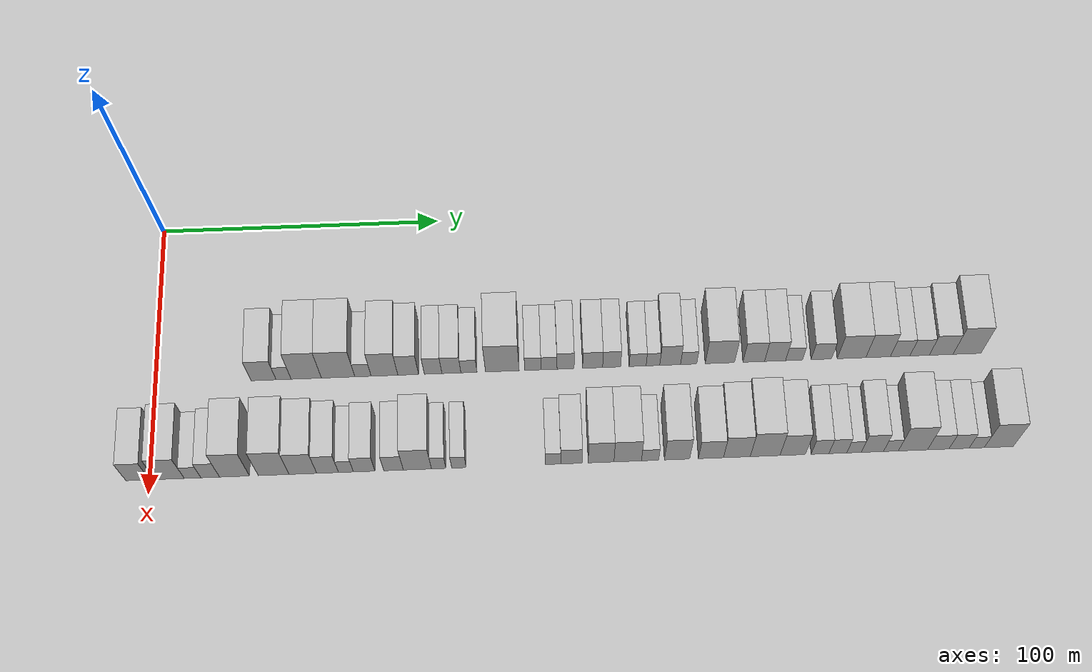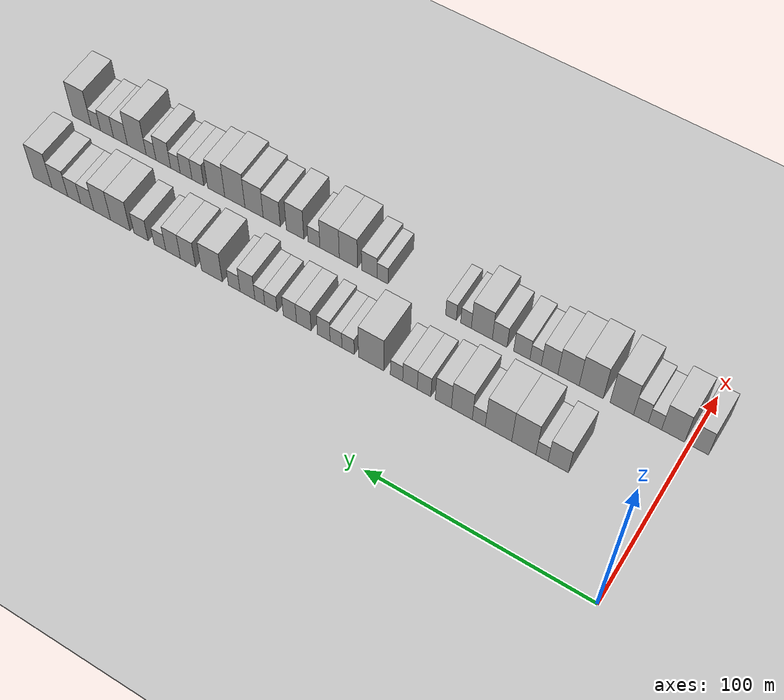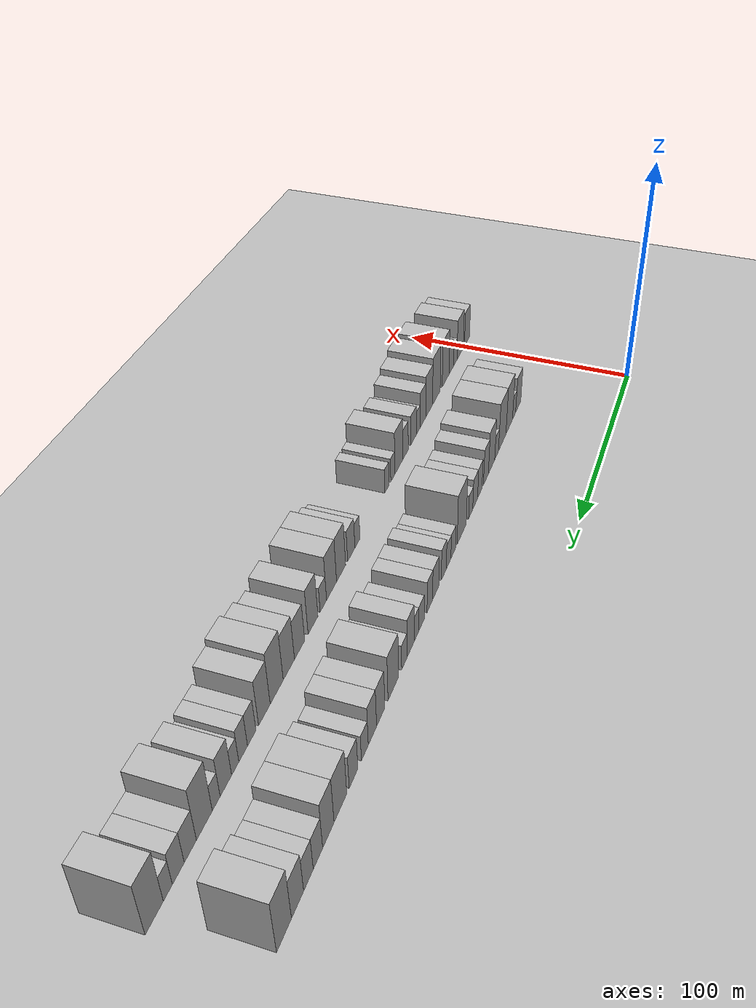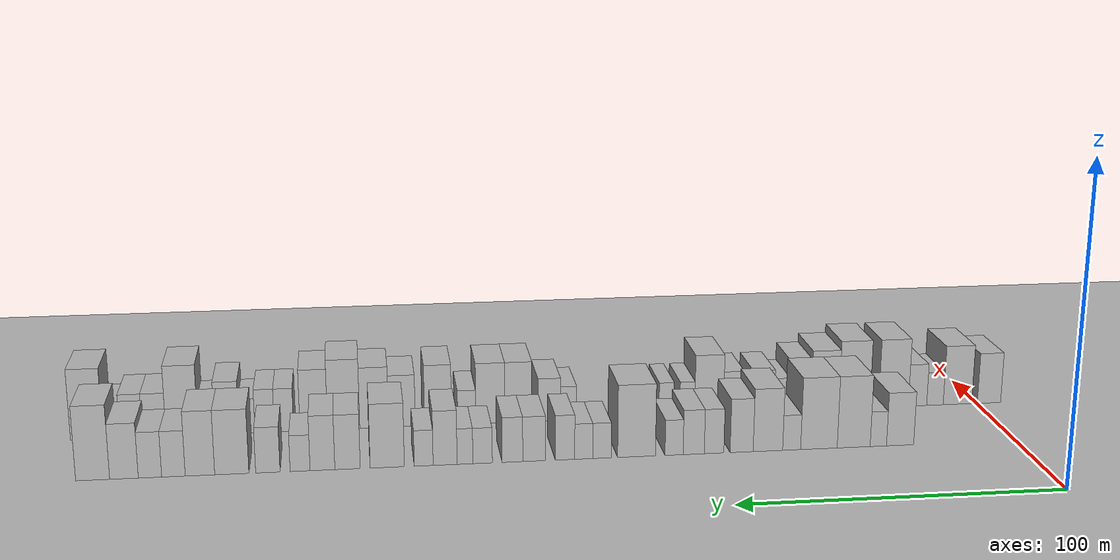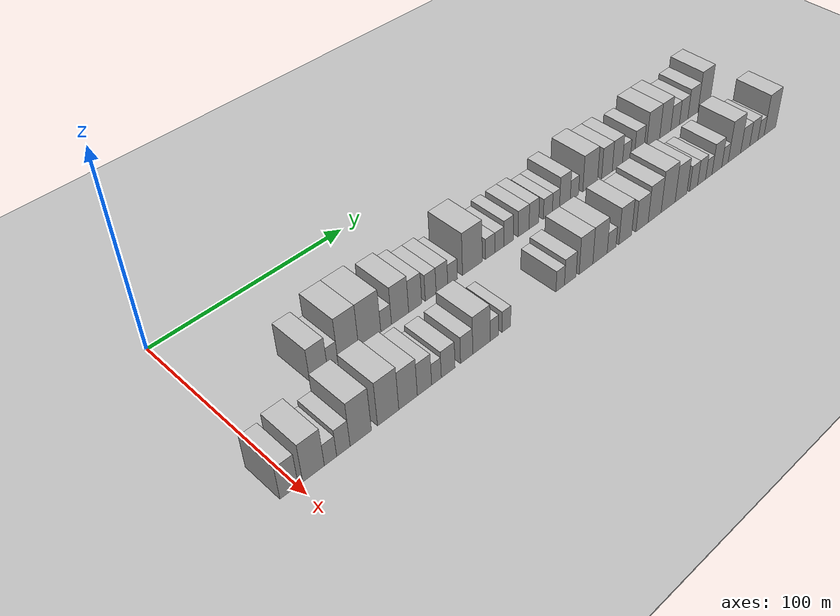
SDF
<sdf version="1.6">
 <world name="default">
  <include><name>ground_plane_1</name><uri>model://HANNAS_ground_plane</uri></include>
  <include>
   <name>ground_plane_2</name>
   <uri>model://HANNAS_ground_plane</uri>
   <pose>100 0 0  0 0 0</pose>
  </include>
  <model name="building_32">
   <static>1</static>
   <pose>50.0000 38.1596 0 0.000000 0.000000 0.000000</pose>
   <link name="link">
    <pose>0 0 9.00 0 0 0</pose>
    <collision name="collision"><geometry><box><size>20.0000 8.8054 18.0000</size></box></geometry></collision>
    <visual name="visual">
     <cast_shadows>0</cast_shadows>
     <geometry><box><size>20.0000 8.8054 18.0000</size></box></geometry>
     <material>
      <script>
       <uri>model://HANNAS_wall/materials/scripts</uri>
       <uri>model://HANNAS_wall/materials/textures</uri>
       <name>vrc/HANNAS_wall</name>
      </script>
     </material>
    </visual>
   </link>
  </model>
  <model name="building_33">
   <static>1</static>
   <pose>50.0000 45.2010 0 0.000000 0.000000 0.000000</pose>
   <link name="link">
    <pose>0 0 6.00 0 0 0</pose>
    <collision name="collision"><geometry><box><size>20.0000 5.2773 12.0000</size></box></geometry></collision>
    <visual name="visual">
     <cast_shadows>0</cast_shadows>
     <geometry><box><size>20.0000 5.2773 12.0000</size></box></geometry>
     <material>
      <script>
       <uri>model://HANNAS_wall/materials/scripts</uri>
       <uri>model://HANNAS_wall/materials/textures</uri>
       <name>vrc/HANNAS_wall</name>
      </script>
     </material>
    </visual>
   </link>
  </model>
  <model name="building_34">
   <static>1</static>
   <pose>50.0000 53.1479 0 0.000000 0.000000 0.000000</pose>
   <link name="link">
    <pose>0 0 12.00 0 0 0</pose>
    <collision name="collision"><geometry><box><size>20.0000 10.6165 24.0000</size></box></geometry></collision>
    <visual name="visual">
     <cast_shadows>0</cast_shadows>
     <geometry><box><size>20.0000 10.6165 24.0000</size></box></geometry>
     <material>
      <script>
       <uri>model://HANNAS_wall/materials/scripts</uri>
       <uri>model://HANNAS_wall/materials/textures</uri>
       <name>vrc/HANNAS_wall</name>
      </script>
     </material>
    </visual>
   </link>
  </model>
  <model name="building_35">
   <static>1</static>
   <pose>50.0000 64.3146 0 0.000000 0.000000 0.000000</pose>
   <link name="link">
    <pose>0 0 12.00 0 0 0</pose>
    <collision name="collision"><geometry><box><size>20.0000 11.7168 24.0000</size></box></geometry></collision>
    <visual name="visual">
     <cast_shadows>0</cast_shadows>
     <geometry><box><size>20.0000 11.7168 24.0000</size></box></geometry>
     <material>
      <script>
       <uri>model://HANNAS_wall/materials/scripts</uri>
       <uri>model://HANNAS_wall/materials/textures</uri>
       <name>vrc/HANNAS_wall</name>
      </script>
     </material>
    </visual>
   </link>
  </model>
  <model name="building_36">
   <static>1</static>
   <pose>50.0000 73.0456 0 0.000000 0.000000 0.000000</pose>
   <link name="link">
    <pose>0 0 6.00 0 0 0</pose>
    <collision name="collision"><geometry><box><size>20.0000 5.7453 12.0000</size></box></geometry></collision>
    <visual name="visual">
     <cast_shadows>0</cast_shadows>
     <geometry><box><size>20.0000 5.7453 12.0000</size></box></geometry>
     <material>
      <script>
       <uri>model://HANNAS_wall/materials/scripts</uri>
       <uri>model://HANNAS_wall/materials/textures</uri>
       <name>vrc/HANNAS_wall</name>
      </script>
     </material>
    </visual>
   </link>
  </model>
  <model name="building_37">
   <static>1</static>
   <pose>50.0000 80.6158 0 0.000000 0.000000 0.000000</pose>
   <link name="link">
    <pose>0 0 10.50 0 0 0</pose>
    <collision name="collision"><geometry><box><size>20.0000 9.3951 21.0000</size></box></geometry></collision>
    <visual name="visual">
     <cast_shadows>0</cast_shadows>
     <geometry><box><size>20.0000 9.3951 21.0000</size></box></geometry>
     <material>
      <script>
       <uri>model://HANNAS_wall/materials/scripts</uri>
       <uri>model://HANNAS_wall/materials/textures</uri>
       <name>vrc/HANNAS_wall</name>
      </script>
     </material>
    </visual>
   </link>
  </model>
  <model name="building_38">
   <static>1</static>
   <pose>50.0000 88.9659 0 0.000000 0.000000 0.000000</pose>
   <link name="link">
    <pose>0 0 9.00 0 0 0</pose>
    <collision name="collision"><geometry><box><size>20.0000 7.3051 18.0000</size></box></geometry></collision>
    <visual name="visual">
     <cast_shadows>0</cast_shadows>
     <geometry><box><size>20.0000 7.3051 18.0000</size></box></geometry>
     <material>
      <script>
       <uri>model://HANNAS_wall/materials/scripts</uri>
       <uri>model://HANNAS_wall/materials/textures</uri>
       <name>vrc/HANNAS_wall</name>
      </script>
     </material>
    </visual>
   </link>
  </model>
  <model name="building_39">
   <static>1</static>
   <pose>50.0000 97.7068 0 0.000000 0.000000 0.000000</pose>
   <link name="link">
    <pose>0 0 7.50 0 0 0</pose>
    <collision name="collision"><geometry><box><size>20.0000 6.1767 15.0000</size></box></geometry></collision>
    <visual name="visual">
     <cast_shadows>0</cast_shadows>
     <geometry><box><size>20.0000 6.1767 15.0000</size></box></geometry>
     <material>
      <script>
       <uri>model://HANNAS_wall/materials/scripts</uri>
       <uri>model://HANNAS_wall/materials/textures</uri>
       <name>vrc/HANNAS_wall</name>
      </script>
     </material>
    </visual>
   </link>
  </model>
  <model name="building_40">
   <static>1</static>
   <pose>50.0000 104.1359 0 0.000000 0.000000 0.000000</pose>
   <link name="link">
    <pose>0 0 7.50 0 0 0</pose>
    <collision name="collision"><geometry><box><size>20.0000 6.6816 15.0000</size></box></geometry></collision>
    <visual name="visual">
     <cast_shadows>0</cast_shadows>
     <geometry><box><size>20.0000 6.6816 15.0000</size></box></geometry>
     <material>
      <script>
       <uri>model://HANNAS_wall/materials/scripts</uri>
       <uri>model://HANNAS_wall/materials/textures</uri>
       <name>vrc/HANNAS_wall</name>
      </script>
     </material>
    </visual>
   </link>
  </model>
  <model name="building_41">
   <static>1</static>
   <pose>50.0000 110.3209 0 0.000000 0.000000 0.000000</pose>
   <link name="link">
    <pose>0 0 6.00 0 0 0</pose>
    <collision name="collision"><geometry><box><size>20.0000 5.6883 12.0000</size></box></geometry></collision>
    <visual name="visual">
     <cast_shadows>0</cast_shadows>
     <geometry><box><size>20.0000 5.6883 12.0000</size></box></geometry>
     <material>
      <script>
       <uri>model://HANNAS_wall/materials/scripts</uri>
       <uri>model://HANNAS_wall/materials/textures</uri>
       <name>vrc/HANNAS_wall</name>
      </script>
     </material>
    </visual>
   </link>
  </model>
  <model name="building_42">
   <static>1</static>
   <pose>50.0000 122.0882 0 0.000000 0.000000 0.000000</pose>
   <link name="link">
    <pose>0 0 12.00 0 0 0</pose>
    <collision name="collision"><geometry><box><size>20.0000 11.8464 24.0000</size></box></geometry></collision>
    <visual name="visual">
     <cast_shadows>0</cast_shadows>
     <geometry><box><size>20.0000 11.8464 24.0000</size></box></geometry>
     <material>
      <script>
       <uri>model://HANNAS_wall/materials/scripts</uri>
       <uri>model://HANNAS_wall/materials/textures</uri>
       <name>vrc/HANNAS_wall</name>
      </script>
     </material>
    </visual>
   </link>
  </model>
  <model name="building_43">
   <static>1</static>
   <pose>50.0000 132.8961 0 0.000000 0.000000 0.000000</pose>
   <link name="link">
    <pose>0 0 6.00 0 0 0</pose>
    <collision name="collision"><geometry><box><size>20.0000 5.7694 12.0000</size></box></geometry></collision>
    <visual name="visual">
     <cast_shadows>0</cast_shadows>
     <geometry><box><size>20.0000 5.7694 12.0000</size></box></geometry>
     <material>
      <script>
       <uri>model://HANNAS_wall/materials/scripts</uri>
       <uri>model://HANNAS_wall/materials/textures</uri>
       <name>vrc/HANNAS_wall</name>
      </script>
     </material>
    </visual>
   </link>
  </model>
  <model name="building_44">
   <static>1</static>
   <pose>50.0000 138.5760 0 0.000000 0.000000 0.000000</pose>
   <link name="link">
    <pose>0 0 6.00 0 0 0</pose>
    <collision name="collision"><geometry><box><size>20.0000 5.5903 12.0000</size></box></geometry></collision>
    <visual name="visual">
     <cast_shadows>0</cast_shadows>
     <geometry><box><size>20.0000 5.5903 12.0000</size></box></geometry>
     <material>
      <script>
       <uri>model://HANNAS_wall/materials/scripts</uri>
       <uri>model://HANNAS_wall/materials/textures</uri>
       <name>vrc/HANNAS_wall</name>
      </script>
     </material>
    </visual>
   </link>
  </model>
  <model name="building_45">
   <static>1</static>
   <pose>50.0000 144.3839 0 0.000000 0.000000 0.000000</pose>
   <link name="link">
    <pose>0 0 7.50 0 0 0</pose>
    <collision name="collision"><geometry><box><size>20.0000 6.0255 15.0000</size></box></geometry></collision>
    <visual name="visual">
     <cast_shadows>0</cast_shadows>
     <geometry><box><size>20.0000 6.0255 15.0000</size></box></geometry>
     <material>
      <script>
       <uri>model://HANNAS_wall/materials/scripts</uri>
       <uri>model://HANNAS_wall/materials/textures</uri>
       <name>vrc/HANNAS_wall</name>
      </script>
     </material>
    </visual>
   </link>
  </model>
  <model name="building_46">
   <static>1</static>
   <pose>50.0000 153.9156 0 0.000000 0.000000 0.000000</pose>
   <link name="link">
    <pose>0 0 7.50 0 0 0</pose>
    <collision name="collision"><geometry><box><size>20.0000 7.0379 15.0000</size></box></geometry></collision>
    <visual name="visual">
     <cast_shadows>0</cast_shadows>
     <geometry><box><size>20.0000 7.0379 15.0000</size></box></geometry>
     <material>
      <script>
       <uri>model://HANNAS_wall/materials/scripts</uri>
       <uri>model://HANNAS_wall/materials/textures</uri>
       <name>vrc/HANNAS_wall</name>
      </script>
     </material>
    </visual>
   </link>
  </model>
  <model name="building_47">
   <static>1</static>
   <pose>50.0000 160.6140 0 0.000000 0.000000 0.000000</pose>
   <link name="link">
    <pose>0 0 7.50 0 0 0</pose>
    <collision name="collision"><geometry><box><size>20.0000 6.3589 15.0000</size></box></geometry></collision>
    <visual name="visual">
     <cast_shadows>0</cast_shadows>
     <geometry><box><size>20.0000 6.3589 15.0000</size></box></geometry>
     <material>
      <script>
       <uri>model://HANNAS_wall/materials/scripts</uri>
       <uri>model://HANNAS_wall/materials/textures</uri>
       <name>vrc/HANNAS_wall</name>
      </script>
     </material>
    </visual>
   </link>
  </model>
  <model name="building_48">
   <static>1</static>
   <pose>50.0000 169.7919 0 0.000000 0.000000 0.000000</pose>
   <link name="link">
    <pose>0 0 6.00 0 0 0</pose>
    <collision name="collision"><geometry><box><size>20.0000 5.9968 12.0000</size></box></geometry></collision>
    <visual name="visual">
     <cast_shadows>0</cast_shadows>
     <geometry><box><size>20.0000 5.9968 12.0000</size></box></geometry>
     <material>
      <script>
       <uri>model://HANNAS_wall/materials/scripts</uri>
       <uri>model://HANNAS_wall/materials/textures</uri>
       <name>vrc/HANNAS_wall</name>
      </script>
     </material>
    </visual>
   </link>
  </model>
  <model name="building_49">
   <static>1</static>
   <pose>50.0000 175.1987 0 0.000000 0.000000 0.000000</pose>
   <link name="link">
    <pose>0 0 6.00 0 0 0</pose>
    <collision name="collision"><geometry><box><size>20.0000 4.8169 12.0000</size></box></geometry></collision>
    <visual name="visual">
     <cast_shadows>0</cast_shadows>
     <geometry><box><size>20.0000 4.8169 12.0000</size></box></geometry>
     <material>
      <script>
       <uri>model://HANNAS_wall/materials/scripts</uri>
       <uri>model://HANNAS_wall/materials/textures</uri>
       <name>vrc/HANNAS_wall</name>
      </script>
     </material>
    </visual>
   </link>
  </model>
  <model name="building_50">
   <static>1</static>
   <pose>50.0000 181.2673 0 0.000000 0.000000 0.000000</pose>
   <link name="link">
    <pose>0 0 9.00 0 0 0</pose>
    <collision name="collision"><geometry><box><size>20.0000 7.3202 18.0000</size></box></geometry></collision>
    <visual name="visual">
     <cast_shadows>0</cast_shadows>
     <geometry><box><size>20.0000 7.3202 18.0000</size></box></geometry>
     <material>
      <script>
       <uri>model://HANNAS_wall/materials/scripts</uri>
       <uri>model://HANNAS_wall/materials/textures</uri>
       <name>vrc/HANNAS_wall</name>
      </script>
     </material>
    </visual>
   </link>
  </model>
  <model name="building_51">
   <static>1</static>
   <pose>50.0000 187.8007 0 0.000000 0.000000 0.000000</pose>
   <link name="link">
    <pose>0 0 6.00 0 0 0</pose>
    <collision name="collision"><geometry><box><size>20.0000 5.7465 12.0000</size></box></geometry></collision>
    <visual name="visual">
     <cast_shadows>0</cast_shadows>
     <geometry><box><size>20.0000 5.7465 12.0000</size></box></geometry>
     <material>
      <script>
       <uri>model://HANNAS_wall/materials/scripts</uri>
       <uri>model://HANNAS_wall/materials/textures</uri>
       <name>vrc/HANNAS_wall</name>
      </script>
     </material>
    </visual>
   </link>
  </model>
  <model name="building_52">
   <static>1</static>
   <pose>50.0000 198.8567 0 0.000000 0.000000 0.000000</pose>
   <link name="link">
    <pose>0 0 10.50 0 0 0</pose>
    <collision name="collision"><geometry><box><size>20.0000 10.3656 21.0000</size></box></geometry></collision>
    <visual name="visual">
     <cast_shadows>0</cast_shadows>
     <geometry><box><size>20.0000 10.3656 21.0000</size></box></geometry>
     <material>
      <script>
       <uri>model://HANNAS_wall/materials/scripts</uri>
       <uri>model://HANNAS_wall/materials/textures</uri>
       <name>vrc/HANNAS_wall</name>
      </script>
     </material>
    </visual>
   </link>
  </model>
  <model name="building_53">
   <static>1</static>
   <pose>50.0000 210.8681 0 0.000000 0.000000 0.000000</pose>
   <link name="link">
    <pose>0 0 9.00 0 0 0</pose>
    <collision name="collision"><geometry><box><size>20.0000 7.6571 18.0000</size></box></geometry></collision>
    <visual name="visual">
     <cast_shadows>0</cast_shadows>
     <geometry><box><size>20.0000 7.6571 18.0000</size></box></geometry>
     <material>
      <script>
       <uri>model://HANNAS_wall/materials/scripts</uri>
       <uri>model://HANNAS_wall/materials/textures</uri>
       <name>vrc/HANNAS_wall</name>
      </script>
     </material>
    </visual>
   </link>
  </model>
  <model name="building_54">
   <static>1</static>
   <pose>50.0000 218.4211 0 0.000000 0.000000 0.000000</pose>
   <link name="link">
    <pose>0 0 9.00 0 0 0</pose>
    <collision name="collision"><geometry><box><size>20.0000 7.4491 18.0000</size></box></geometry></collision>
    <visual name="visual">
     <cast_shadows>0</cast_shadows>
     <geometry><box><size>20.0000 7.4491 18.0000</size></box></geometry>
     <material>
      <script>
       <uri>model://HANNAS_wall/materials/scripts</uri>
       <uri>model://HANNAS_wall/materials/textures</uri>
       <name>vrc/HANNAS_wall</name>
      </script>
     </material>
    </visual>
   </link>
  </model>
  <model name="building_55">
   <static>1</static>
   <pose>50.0000 225.1377 0 0.000000 0.000000 0.000000</pose>
   <link name="link">
    <pose>0 0 6.00 0 0 0</pose>
    <collision name="collision"><geometry><box><size>20.0000 5.9840 12.0000</size></box></geometry></collision>
    <visual name="visual">
     <cast_shadows>0</cast_shadows>
     <geometry><box><size>20.0000 5.9840 12.0000</size></box></geometry>
     <material>
      <script>
       <uri>model://HANNAS_wall/materials/scripts</uri>
       <uri>model://HANNAS_wall/materials/textures</uri>
       <name>vrc/HANNAS_wall</name>
      </script>
     </material>
    </visual>
   </link>
  </model>
  <model name="building_56">
   <static>1</static>
   <pose>50.0000 234.7760 0 0.000000 0.000000 0.000000</pose>
   <link name="link">
    <pose>0 0 7.50 0 0 0</pose>
    <collision name="collision"><geometry><box><size>20.0000 7.2926 15.0000</size></box></geometry></collision>
    <visual name="visual">
     <cast_shadows>0</cast_shadows>
     <geometry><box><size>20.0000 7.2926 15.0000</size></box></geometry>
     <material>
      <script>
       <uri>model://HANNAS_wall/materials/scripts</uri>
       <uri>model://HANNAS_wall/materials/textures</uri>
       <name>vrc/HANNAS_wall</name>
      </script>
     </material>
    </visual>
   </link>
  </model>
  <model name="building_57">
   <static>1</static>
   <pose>50.0000 245.5050 0 0.000000 0.000000 0.000000</pose>
   <link name="link">
    <pose>0 0 10.50 0 0 0</pose>
    <collision name="collision"><geometry><box><size>20.0000 10.1655 21.0000</size></box></geometry></collision>
    <visual name="visual">
     <cast_shadows>0</cast_shadows>
     <geometry><box><size>20.0000 10.1655 21.0000</size></box></geometry>
     <material>
      <script>
       <uri>model://HANNAS_wall/materials/scripts</uri>
       <uri>model://HANNAS_wall/materials/textures</uri>
       <name>vrc/HANNAS_wall</name>
      </script>
     </material>
    </visual>
   </link>
  </model>
  <model name="building_58">
   <static>1</static>
   <pose>50.0000 254.9499 0 0.000000 0.000000 0.000000</pose>
   <link name="link">
    <pose>0 0 10.50 0 0 0</pose>
    <collision name="collision"><geometry><box><size>20.0000 8.7243 21.0000</size></box></geometry></collision>
    <visual name="visual">
     <cast_shadows>0</cast_shadows>
     <geometry><box><size>20.0000 8.7243 21.0000</size></box></geometry>
     <material>
      <script>
       <uri>model://HANNAS_wall/materials/scripts</uri>
       <uri>model://HANNAS_wall/materials/textures</uri>
       <name>vrc/HANNAS_wall</name>
      </script>
     </material>
    </visual>
   </link>
  </model>
  <model name="building_59">
   <static>1</static>
   <pose>50.0000 262.7905 0 0.000000 0.000000 0.000000</pose>
   <link name="link">
    <pose>0 0 7.50 0 0 0</pose>
    <collision name="collision"><geometry><box><size>20.0000 6.9570 15.0000</size></box></geometry></collision>
    <visual name="visual">
     <cast_shadows>0</cast_shadows>
     <geometry><box><size>20.0000 6.9570 15.0000</size></box></geometry>
     <material>
      <script>
       <uri>model://HANNAS_wall/materials/scripts</uri>
       <uri>model://HANNAS_wall/materials/textures</uri>
       <name>vrc/HANNAS_wall</name>
      </script>
     </material>
    </visual>
   </link>
  </model>
  <model name="building_60">
   <static>1</static>
   <pose>50.0000 269.7116 0 0.000000 0.000000 0.000000</pose>
   <link name="link">
    <pose>0 0 7.50 0 0 0</pose>
    <collision name="collision"><geometry><box><size>20.0000 6.8853 15.0000</size></box></geometry></collision>
    <visual name="visual">
     <cast_shadows>0</cast_shadows>
     <geometry><box><size>20.0000 6.8853 15.0000</size></box></geometry>
     <material>
      <script>
       <uri>model://HANNAS_wall/materials/scripts</uri>
       <uri>model://HANNAS_wall/materials/textures</uri>
       <name>vrc/HANNAS_wall</name>
      </script>
     </material>
    </visual>
   </link>
  </model>
  <model name="building_61">
   <static>1</static>
   <pose>50.0000 277.3475 0 0.000000 0.000000 0.000000</pose>
   <link name="link">
    <pose>0 0 9.00 0 0 0</pose>
    <collision name="collision"><geometry><box><size>20.0000 8.3864 18.0000</size></box></geometry></collision>
    <visual name="visual">
     <cast_shadows>0</cast_shadows>
     <geometry><box><size>20.0000 8.3864 18.0000</size></box></geometry>
     <material>
      <script>
       <uri>model://HANNAS_wall/materials/scripts</uri>
       <uri>model://HANNAS_wall/materials/textures</uri>
       <name>vrc/HANNAS_wall</name>
      </script>
     </material>
    </visual>
   </link>
  </model>
  <model name="building_62">
   <static>1</static>
   <pose>50.0000 286.5078 0 0.000000 0.000000 0.000000</pose>
   <link name="link">
    <pose>0 0 12.00 0 0 0</pose>
    <collision name="collision"><geometry><box><size>20.0000 9.9341 24.0000</size></box></geometry></collision>
    <visual name="visual">
     <cast_shadows>0</cast_shadows>
     <geometry><box><size>20.0000 9.9341 24.0000</size></box></geometry>
     <material>
      <script>
       <uri>model://HANNAS_wall/materials/scripts</uri>
       <uri>model://HANNAS_wall/materials/textures</uri>
       <name>vrc/HANNAS_wall</name>
      </script>
     </material>
    </visual>
   </link>
  </model>
  <model name="building_97">
   <static>1</static>
   <pose>85.0000 -3.8224 0 0.000000 0.000000 0.000000</pose>
   <link name="link">
    <pose>0 0 9.00 0 0 0</pose>
    <collision name="collision"><geometry><box><size>20.0000 8.1064 18.0000</size></box></geometry></collision>
    <visual name="visual">
     <cast_shadows>0</cast_shadows>
     <geometry><box><size>20.0000 8.1064 18.0000</size></box></geometry>
     <material>
      <script>
       <uri>model://HANNAS_wall/materials/scripts</uri>
       <uri>model://HANNAS_wall/materials/textures</uri>
       <name>vrc/HANNAS_wall</name>
      </script>
     </material>
    </visual>
   </link>
  </model>
  <model name="building_98">
   <static>1</static>
   <pose>85.0000 7.1614 0 0.000000 0.000000 0.000000</pose>
   <link name="link">
    <pose>0 0 10.50 0 0 0</pose>
    <collision name="collision"><geometry><box><size>20.0000 9.8611 21.0000</size></box></geometry></collision>
    <visual name="visual">
     <cast_shadows>0</cast_shadows>
     <geometry><box><size>20.0000 9.8611 21.0000</size></box></geometry>
     <material>
      <script>
       <uri>model://HANNAS_wall/materials/scripts</uri>
       <uri>model://HANNAS_wall/materials/textures</uri>
       <name>vrc/HANNAS_wall</name>
      </script>
     </material>
    </visual>
   </link>
  </model>
  <model name="building_99">
   <static>1</static>
   <pose>85.0000 14.9528 0 0.000000 0.000000 0.000000</pose>
   <link name="link">
    <pose>0 0 6.00 0 0 0</pose>
    <collision name="collision"><geometry><box><size>20.0000 5.7216 12.0000</size></box></geometry></collision>
    <visual name="visual">
     <cast_shadows>0</cast_shadows>
     <geometry><box><size>20.0000 5.7216 12.0000</size></box></geometry>
     <material>
      <script>
       <uri>model://HANNAS_wall/materials/scripts</uri>
       <uri>model://HANNAS_wall/materials/textures</uri>
       <name>vrc/HANNAS_wall</name>
      </script>
     </material>
    </visual>
   </link>
  </model>
  <model name="building_100">
   <static>1</static>
   <pose>85.0000 20.9844 0 0.000000 0.000000 0.000000</pose>
   <link name="link">
    <pose>0 0 7.50 0 0 0</pose>
    <collision name="collision"><geometry><box><size>20.0000 6.3417 15.0000</size></box></geometry></collision>
    <visual name="visual">
     <cast_shadows>0</cast_shadows>
     <geometry><box><size>20.0000 6.3417 15.0000</size></box></geometry>
     <material>
      <script>
       <uri>model://HANNAS_wall/materials/scripts</uri>
       <uri>model://HANNAS_wall/materials/textures</uri>
       <name>vrc/HANNAS_wall</name>
      </script>
     </material>
    </visual>
   </link>
  </model>
  <model name="building_101">
   <static>1</static>
   <pose>85.0000 29.2850 0 0.000000 0.000000 0.000000</pose>
   <link name="link">
    <pose>0 0 12.00 0 0 0</pose>
    <collision name="collision"><geometry><box><size>20.0000 10.2594 24.0000</size></box></geometry></collision>
    <visual name="visual">
     <cast_shadows>0</cast_shadows>
     <geometry><box><size>20.0000 10.2594 24.0000</size></box></geometry>
     <material>
      <script>
       <uri>model://HANNAS_wall/materials/scripts</uri>
       <uri>model://HANNAS_wall/materials/textures</uri>
       <name>vrc/HANNAS_wall</name>
      </script>
     </material>
    </visual>
   </link>
  </model>
  <model name="building_102">
   <static>1</static>
   <pose>85.0000 42.7125 0 0.000000 0.000000 0.000000</pose>
   <link name="link">
    <pose>0 0 12.00 0 0 0</pose>
    <collision name="collision"><geometry><box><size>20.0000 10.5956 24.0000</size></box></geometry></collision>
    <visual name="visual">
     <cast_shadows>0</cast_shadows>
     <geometry><box><size>20.0000 10.5956 24.0000</size></box></geometry>
     <material>
      <script>
       <uri>model://HANNAS_wall/materials/scripts</uri>
       <uri>model://HANNAS_wall/materials/textures</uri>
       <name>vrc/HANNAS_wall</name>
      </script>
     </material>
    </visual>
   </link>
  </model>
  <model name="building_103">
   <static>1</static>
   <pose>85.0000 52.7380 0 0.000000 0.000000 0.000000</pose>
   <link name="link">
    <pose>0 0 10.50 0 0 0</pose>
    <collision name="collision"><geometry><box><size>20.0000 9.4554 21.0000</size></box></geometry></collision>
    <visual name="visual">
     <cast_shadows>0</cast_shadows>
     <geometry><box><size>20.0000 9.4554 21.0000</size></box></geometry>
     <material>
      <script>
       <uri>model://HANNAS_wall/materials/scripts</uri>
       <uri>model://HANNAS_wall/materials/textures</uri>
       <name>vrc/HANNAS_wall</name>
      </script>
     </material>
    </visual>
   </link>
  </model>
  <model name="building_104">
   <static>1</static>
   <pose>85.0000 61.2043 0 0.000000 0.000000 0.000000</pose>
   <link name="link">
    <pose>0 0 9.00 0 0 0</pose>
    <collision name="collision"><geometry><box><size>20.0000 7.4770 18.0000</size></box></geometry></collision>
    <visual name="visual">
     <cast_shadows>0</cast_shadows>
     <geometry><box><size>20.0000 7.4770 18.0000</size></box></geometry>
     <material>
      <script>
       <uri>model://HANNAS_wall/materials/scripts</uri>
       <uri>model://HANNAS_wall/materials/textures</uri>
       <name>vrc/HANNAS_wall</name>
      </script>
     </material>
    </visual>
   </link>
  </model>
  <model name="building_105">
   <static>1</static>
   <pose>85.0000 67.4993 0 0.000000 0.000000 0.000000</pose>
   <link name="link">
    <pose>0 0 6.00 0 0 0</pose>
    <collision name="collision"><geometry><box><size>20.0000 5.1131 12.0000</size></box></geometry></collision>
    <visual name="visual">
     <cast_shadows>0</cast_shadows>
     <geometry><box><size>20.0000 5.1131 12.0000</size></box></geometry>
     <material>
      <script>
       <uri>model://HANNAS_wall/materials/scripts</uri>
       <uri>model://HANNAS_wall/materials/textures</uri>
       <name>vrc/HANNAS_wall</name>
      </script>
     </material>
    </visual>
   </link>
  </model>
  <model name="building_106">
   <static>1</static>
   <pose>85.0000 73.7506 0 0.000000 0.000000 0.000000</pose>
   <link name="link">
    <pose>0 0 7.50 0 0 0</pose>
    <collision name="collision"><geometry><box><size>20.0000 7.3895 15.0000</size></box></geometry></collision>
    <visual name="visual">
     <cast_shadows>0</cast_shadows>
     <geometry><box><size>20.0000 7.3895 15.0000</size></box></geometry>
     <material>
      <script>
       <uri>model://HANNAS_wall/materials/scripts</uri>
       <uri>model://HANNAS_wall/materials/textures</uri>
       <name>vrc/HANNAS_wall</name>
      </script>
     </material>
    </visual>
   </link>
  </model>
  <model name="building_107">
   <static>1</static>
   <pose>85.0000 83.8105 0 0.000000 0.000000 0.000000</pose>
   <link name="link">
    <pose>0 0 7.50 0 0 0</pose>
    <collision name="collision"><geometry><box><size>20.0000 6.7302 15.0000</size></box></geometry></collision>
    <visual name="visual">
     <cast_shadows>0</cast_shadows>
     <geometry><box><size>20.0000 6.7302 15.0000</size></box></geometry>
     <material>
      <script>
       <uri>model://HANNAS_wall/materials/scripts</uri>
       <uri>model://HANNAS_wall/materials/textures</uri>
       <name>vrc/HANNAS_wall</name>
      </script>
     </material>
    </visual>
   </link>
  </model>
  <model name="building_108">
   <static>1</static>
   <pose>85.0000 92.0110 0 0.000000 0.000000 0.000000</pose>
   <link name="link">
    <pose>0 0 10.50 0 0 0</pose>
    <collision name="collision"><geometry><box><size>20.0000 9.6709 21.0000</size></box></geometry></collision>
    <visual name="visual">
     <cast_shadows>0</cast_shadows>
     <geometry><box><size>20.0000 9.6709 21.0000</size></box></geometry>
     <material>
      <script>
       <uri>model://HANNAS_wall/materials/scripts</uri>
       <uri>model://HANNAS_wall/materials/textures</uri>
       <name>vrc/HANNAS_wall</name>
      </script>
     </material>
    </visual>
   </link>
  </model>
  <model name="building_109">
   <static>1</static>
   <pose>85.0000 99.3276 0 0.000000 0.000000 0.000000</pose>
   <link name="link">
    <pose>0 0 6.00 0 0 0</pose>
    <collision name="collision"><geometry><box><size>20.0000 4.9623 12.0000</size></box></geometry></collision>
    <visual name="visual">
     <cast_shadows>0</cast_shadows>
     <geometry><box><size>20.0000 4.9623 12.0000</size></box></geometry>
     <material>
      <script>
       <uri>model://HANNAS_wall/materials/scripts</uri>
       <uri>model://HANNAS_wall/materials/textures</uri>
       <name>vrc/HANNAS_wall</name>
      </script>
     </material>
    </visual>
   </link>
  </model>
  <model name="building_110">
   <static>1</static>
   <pose>85.0000 106.3001 0 0.000000 0.000000 0.000000</pose>
   <link name="link">
    <pose>0 0 6.00 0 0 0</pose>
    <collision name="collision"><geometry><box><size>20.0000 4.9826 12.0000</size></box></geometry></collision>
    <visual name="visual">
     <cast_shadows>0</cast_shadows>
     <geometry><box><size>20.0000 4.9826 12.0000</size></box></geometry>
     <material>
      <script>
       <uri>model://HANNAS_wall/materials/scripts</uri>
       <uri>model://HANNAS_wall/materials/textures</uri>
       <name>vrc/HANNAS_wall</name>
      </script>
     </material>
    </visual>
   </link>
  </model>
  <model name="building_111">
   <static>1</static>
   <pose>85.0000 138.7536 0 0.000000 0.000000 0.000000</pose>
   <link name="link">
    <pose>0 0 6.00 0 0 0</pose>
    <collision name="collision"><geometry><box><size>20.0000 5.3081 12.0000</size></box></geometry></collision>
    <visual name="visual">
     <cast_shadows>0</cast_shadows>
     <geometry><box><size>20.0000 5.3081 12.0000</size></box></geometry>
     <material>
      <script>
       <uri>model://HANNAS_wall/materials/scripts</uri>
       <uri>model://HANNAS_wall/materials/textures</uri>
       <name>vrc/HANNAS_wall</name>
      </script>
     </material>
    </visual>
   </link>
  </model>
  <model name="building_112">
   <static>1</static>
   <pose>85.0000 145.1075 0 0.000000 0.000000 0.000000</pose>
   <link name="link">
    <pose>0 0 7.50 0 0 0</pose>
    <collision name="collision"><geometry><box><size>20.0000 7.3998 15.0000</size></box></geometry></collision>
    <visual name="visual">
     <cast_shadows>0</cast_shadows>
     <geometry><box><size>20.0000 7.3998 15.0000</size></box></geometry>
     <material>
      <script>
       <uri>model://HANNAS_wall/materials/scripts</uri>
       <uri>model://HANNAS_wall/materials/textures</uri>
       <name>vrc/HANNAS_wall</name>
      </script>
     </material>
    </visual>
   </link>
  </model>
  <model name="building_113">
   <static>1</static>
   <pose>85.0000 155.2365 0 0.000000 0.000000 0.000000</pose>
   <link name="link">
    <pose>0 0 10.50 0 0 0</pose>
    <collision name="collision"><geometry><box><size>20.0000 8.8582 21.0000</size></box></geometry></collision>
    <visual name="visual">
     <cast_shadows>0</cast_shadows>
     <geometry><box><size>20.0000 8.8582 21.0000</size></box></geometry>
     <material>
      <script>
       <uri>model://HANNAS_wall/materials/scripts</uri>
       <uri>model://HANNAS_wall/materials/textures</uri>
       <name>vrc/HANNAS_wall</name>
      </script>
     </material>
    </visual>
   </link>
  </model>
  <model name="building_114">
   <static>1</static>
   <pose>85.0000 164.4168 0 0.000000 0.000000 0.000000</pose>
   <link name="link">
    <pose>0 0 10.50 0 0 0</pose>
    <collision name="collision"><geometry><box><size>20.0000 9.5023 21.0000</size></box></geometry></collision>
    <visual name="visual">
     <cast_shadows>0</cast_shadows>
     <geometry><box><size>20.0000 9.5023 21.0000</size></box></geometry>
     <material>
      <script>
       <uri>model://HANNAS_wall/materials/scripts</uri>
       <uri>model://HANNAS_wall/materials/textures</uri>
       <name>vrc/HANNAS_wall</name>
      </script>
     </material>
    </visual>
   </link>
  </model>
  <model name="building_115">
   <static>1</static>
   <pose>85.0000 172.1243 0 0.000000 0.000000 0.000000</pose>
   <link name="link">
    <pose>0 0 6.00 0 0 0</pose>
    <collision name="collision"><geometry><box><size>20.0000 5.9128 12.0000</size></box></geometry></collision>
    <visual name="visual">
     <cast_shadows>0</cast_shadows>
     <geometry><box><size>20.0000 5.9128 12.0000</size></box></geometry>
     <material>
      <script>
       <uri>model://HANNAS_wall/materials/scripts</uri>
       <uri>model://HANNAS_wall/materials/textures</uri>
       <name>vrc/HANNAS_wall</name>
      </script>
     </material>
    </visual>
   </link>
  </model>
  <model name="building_116">
   <static>1</static>
   <pose>85.0000 181.4521 0 0.000000 0.000000 0.000000</pose>
   <link name="link">
    <pose>0 0 10.50 0 0 0</pose>
    <collision name="collision"><geometry><box><size>20.0000 8.7429 21.0000</size></box></geometry></collision>
    <visual name="visual">
     <cast_shadows>0</cast_shadows>
     <geometry><box><size>20.0000 8.7429 21.0000</size></box></geometry>
     <material>
      <script>
       <uri>model://HANNAS_wall/materials/scripts</uri>
       <uri>model://HANNAS_wall/materials/textures</uri>
       <name>vrc/HANNAS_wall</name>
      </script>
     </material>
    </visual>
   </link>
  </model>
  <model name="building_117">
   <static>1</static>
   <pose>85.0000 193.1525 0 0.000000 0.000000 0.000000</pose>
   <link name="link">
    <pose>0 0 9.00 0 0 0</pose>
    <collision name="collision"><geometry><box><size>20.0000 8.6578 18.0000</size></box></geometry></collision>
    <visual name="visual">
     <cast_shadows>0</cast_shadows>
     <geometry><box><size>20.0000 8.6578 18.0000</size></box></geometry>
     <material>
      <script>
       <uri>model://HANNAS_wall/materials/scripts</uri>
       <uri>model://HANNAS_wall/materials/textures</uri>
       <name>vrc/HANNAS_wall</name>
      </script>
     </material>
    </visual>
   </link>
  </model>
  <model name="building_118">
   <static>1</static>
   <pose>85.0000 202.1038 0 0.000000 0.000000 0.000000</pose>
   <link name="link">
    <pose>0 0 10.50 0 0 0</pose>
    <collision name="collision"><geometry><box><size>20.0000 9.2448 21.0000</size></box></geometry></collision>
    <visual name="visual">
     <cast_shadows>0</cast_shadows>
     <geometry><box><size>20.0000 9.2448 21.0000</size></box></geometry>
     <material>
      <script>
       <uri>model://HANNAS_wall/materials/scripts</uri>
       <uri>model://HANNAS_wall/materials/textures</uri>
       <name>vrc/HANNAS_wall</name>
      </script>
     </material>
    </visual>
   </link>
  </model>
  <model name="building_119">
   <static>1</static>
   <pose>85.0000 211.8781 0 0.000000 0.000000 0.000000</pose>
   <link name="link">
    <pose>0 0 12.00 0 0 0</pose>
    <collision name="collision"><geometry><box><size>20.0000 10.3037 24.0000</size></box></geometry></collision>
    <visual name="visual">
     <cast_shadows>0</cast_shadows>
     <geometry><box><size>20.0000 10.3037 24.0000</size></box></geometry>
     <material>
      <script>
       <uri>model://HANNAS_wall/materials/scripts</uri>
       <uri>model://HANNAS_wall/materials/textures</uri>
       <name>vrc/HANNAS_wall</name>
      </script>
     </material>
    </visual>
   </link>
  </model>
  <model name="building_120">
   <static>1</static>
   <pose>85.0000 221.4346 0 0.000000 0.000000 0.000000</pose>
   <link name="link">
    <pose>0 0 10.50 0 0 0</pose>
    <collision name="collision"><geometry><box><size>20.0000 8.8093 21.0000</size></box></geometry></collision>
    <visual name="visual">
     <cast_shadows>0</cast_shadows>
     <geometry><box><size>20.0000 8.8093 21.0000</size></box></geometry>
     <material>
      <script>
       <uri>model://HANNAS_wall/materials/scripts</uri>
       <uri>model://HANNAS_wall/materials/textures</uri>
       <name>vrc/HANNAS_wall</name>
      </script>
     </material>
    </visual>
   </link>
  </model>
  <model name="building_121">
   <static>1</static>
   <pose>85.0000 230.9084 0 0.000000 0.000000 0.000000</pose>
   <link name="link">
    <pose>0 0 7.50 0 0 0</pose>
    <collision name="collision"><geometry><box><size>20.0000 6.1385 15.0000</size></box></geometry></collision>
    <visual name="visual">
     <cast_shadows>0</cast_shadows>
     <geometry><box><size>20.0000 6.1385 15.0000</size></box></geometry>
     <material>
      <script>
       <uri>model://HANNAS_wall/materials/scripts</uri>
       <uri>model://HANNAS_wall/materials/textures</uri>
       <name>vrc/HANNAS_wall</name>
      </script>
     </material>
    </visual>
   </link>
  </model>
  <model name="building_122">
   <static>1</static>
   <pose>85.0000 237.0631 0 0.000000 0.000000 0.000000</pose>
   <link name="link">
    <pose>0 0 7.50 0 0 0</pose>
    <collision name="collision"><geometry><box><size>20.0000 6.1708 15.0000</size></box></geometry></collision>
    <visual name="visual">
     <cast_shadows>0</cast_shadows>
     <geometry><box><size>20.0000 6.1708 15.0000</size></box></geometry>
     <material>
      <script>
       <uri>model://HANNAS_wall/materials/scripts</uri>
       <uri>model://HANNAS_wall/materials/textures</uri>
       <name>vrc/HANNAS_wall</name>
      </script>
     </material>
    </visual>
   </link>
  </model>
  <model name="building_123">
   <static>1</static>
   <pose>85.0000 242.6517 0 0.000000 0.000000 0.000000</pose>
   <link name="link">
    <pose>0 0 6.00 0 0 0</pose>
    <collision name="collision"><geometry><box><size>20.0000 5.0065 12.0000</size></box></geometry></collision>
    <visual name="visual">
     <cast_shadows>0</cast_shadows>
     <geometry><box><size>20.0000 5.0065 12.0000</size></box></geometry>
     <material>
      <script>
       <uri>model://HANNAS_wall/materials/scripts</uri>
       <uri>model://HANNAS_wall/materials/textures</uri>
       <name>vrc/HANNAS_wall</name>
      </script>
     </material>
    </visual>
   </link>
  </model>
  <model name="building_124">
   <static>1</static>
   <pose>85.0000 249.0379 0 0.000000 0.000000 0.000000</pose>
   <link name="link">
    <pose>0 0 9.00 0 0 0</pose>
    <collision name="collision"><geometry><box><size>20.0000 7.7659 18.0000</size></box></geometry></collision>
    <visual name="visual">
     <cast_shadows>0</cast_shadows>
     <geometry><box><size>20.0000 7.7659 18.0000</size></box></geometry>
     <material>
      <script>
       <uri>model://HANNAS_wall/materials/scripts</uri>
       <uri>model://HANNAS_wall/materials/textures</uri>
       <name>vrc/HANNAS_wall</name>
      </script>
     </material>
    </visual>
   </link>
  </model>
  <model name="building_125">
   <static>1</static>
   <pose>85.0000 255.4990 0 0.000000 0.000000 0.000000</pose>
   <link name="link">
    <pose>0 0 6.00 0 0 0</pose>
    <collision name="collision"><geometry><box><size>20.0000 5.1561 12.0000</size></box></geometry></collision>
    <visual name="visual">
     <cast_shadows>0</cast_shadows>
     <geometry><box><size>20.0000 5.1561 12.0000</size></box></geometry>
     <material>
      <script>
       <uri>model://HANNAS_wall/materials/scripts</uri>
       <uri>model://HANNAS_wall/materials/textures</uri>
       <name>vrc/HANNAS_wall</name>
      </script>
     </material>
    </visual>
   </link>
  </model>
  <model name="building_126">
   <static>1</static>
   <pose>85.0000 263.1303 0 0.000000 0.000000 0.000000</pose>
   <link name="link">
    <pose>0 0 12.00 0 0 0</pose>
    <collision name="collision"><geometry><box><size>20.0000 10.1066 24.0000</size></box></geometry></collision>
    <visual name="visual">
     <cast_shadows>0</cast_shadows>
     <geometry><box><size>20.0000 10.1066 24.0000</size></box></geometry>
     <material>
      <script>
       <uri>model://HANNAS_wall/materials/scripts</uri>
       <uri>model://HANNAS_wall/materials/textures</uri>
       <name>vrc/HANNAS_wall</name>
      </script>
     </material>
    </visual>
   </link>
  </model>
  <model name="building_127">
   <static>1</static>
   <pose>85.0000 271.9014 0 0.000000 0.000000 0.000000</pose>
   <link name="link">
    <pose>0 0 7.50 0 0 0</pose>
    <collision name="collision"><geometry><box><size>20.0000 7.4357 15.0000</size></box></geometry></collision>
    <visual name="visual">
     <cast_shadows>0</cast_shadows>
     <geometry><box><size>20.0000 7.4357 15.0000</size></box></geometry>
     <material>
      <script>
       <uri>model://HANNAS_wall/materials/scripts</uri>
       <uri>model://HANNAS_wall/materials/textures</uri>
       <name>vrc/HANNAS_wall</name>
      </script>
     </material>
    </visual>
   </link>
  </model>
  <model name="building_128">
   <static>1</static>
   <pose>85.0000 279.1171 0 0.000000 0.000000 0.000000</pose>
   <link name="link">
    <pose>0 0 7.50 0 0 0</pose>
    <collision name="collision"><geometry><box><size>20.0000 6.9955 15.0000</size></box></geometry></collision>
    <visual name="visual">
     <cast_shadows>0</cast_shadows>
     <geometry><box><size>20.0000 6.9955 15.0000</size></box></geometry>
     <material>
      <script>
       <uri>model://HANNAS_wall/materials/scripts</uri>
       <uri>model://HANNAS_wall/materials/textures</uri>
       <name>vrc/HANNAS_wall</name>
      </script>
     </material>
    </visual>
   </link>
  </model>
  <model name="building_129">
   <static>1</static>
   <pose>85.0000 285.2258 0 0.000000 0.000000 0.000000</pose>
   <link name="link">
    <pose>0 0 6.00 0 0 0</pose>
    <collision name="collision"><geometry><box><size>20.0000 5.2220 12.0000</size></box></geometry></collision>
    <visual name="visual">
     <cast_shadows>0</cast_shadows>
     <geometry><box><size>20.0000 5.2220 12.0000</size></box></geometry>
     <material>
      <script>
       <uri>model://HANNAS_wall/materials/scripts</uri>
       <uri>model://HANNAS_wall/materials/textures</uri>
       <name>vrc/HANNAS_wall</name>
      </script>
     </material>
    </visual>
   </link>
  </model>
  <model name="building_130">
   <static>1</static>
   <pose>85.0000 292.8958 0 0.000000 0.000000 0.000000</pose>
   <link name="link">
    <pose>0 0 12.00 0 0 0</pose>
    <collision name="collision"><geometry><box><size>20.0000 10.1179 24.0000</size></box></geometry></collision>
    <visual name="visual">
     <cast_shadows>0</cast_shadows>
     <geometry><box><size>20.0000 10.1179 24.0000</size></box></geometry>
     <material>
      <script>
       <uri>model://HANNAS_wall/materials/scripts</uri>
       <uri>model://HANNAS_wall/materials/textures</uri>
       <name>vrc/HANNAS_wall</name>
      </script>
     </material>
    </visual>
   </link>
  </model>
 </world>
</sdf>
